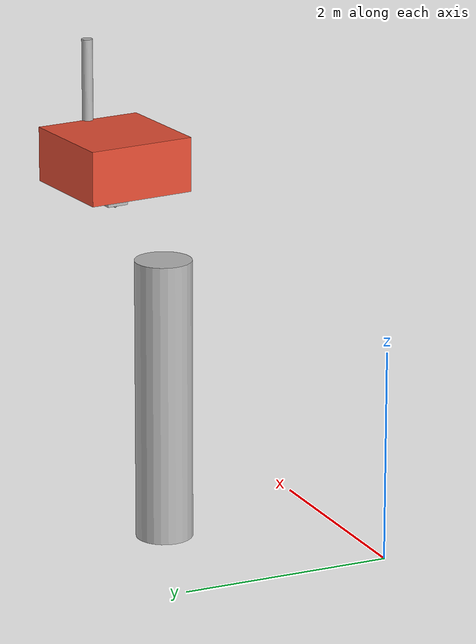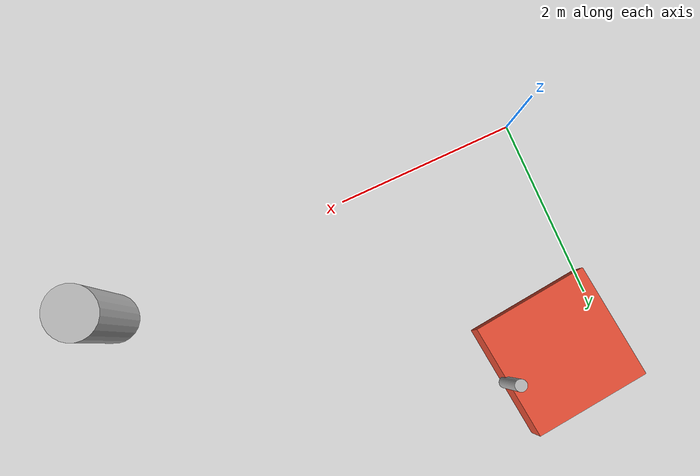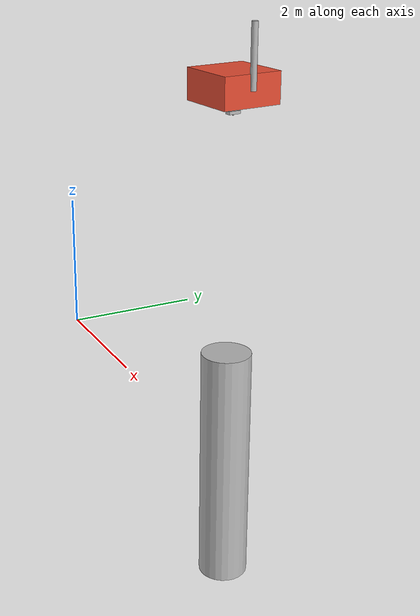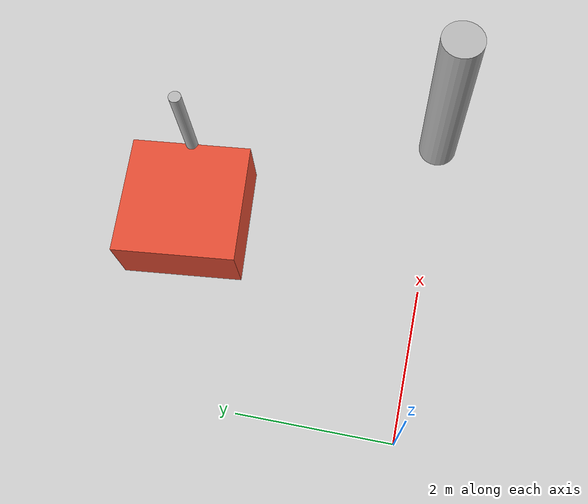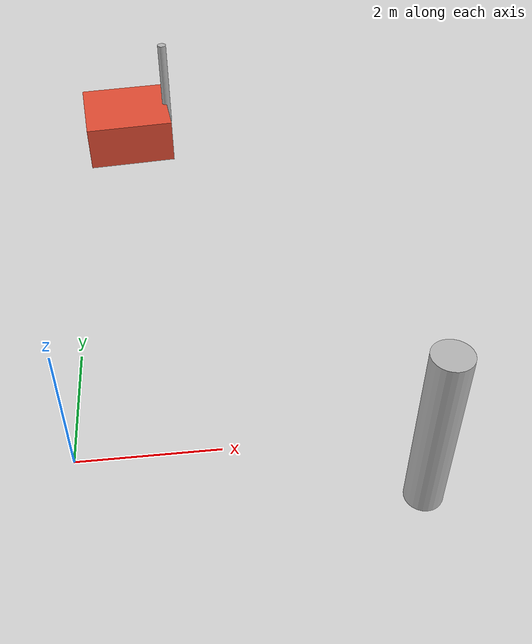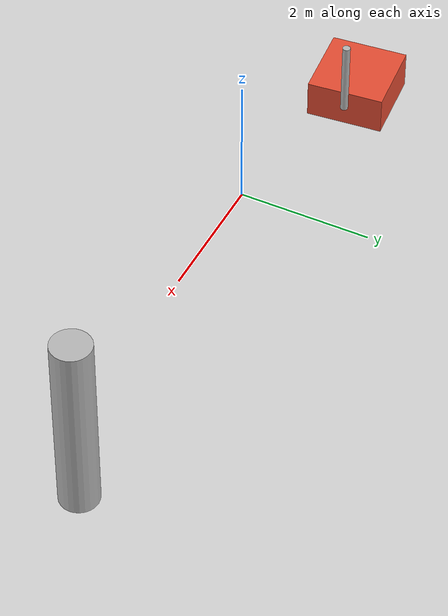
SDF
<sdf version="1.12">
 <world name="nested_test_world">
  <model name="top_robot">
   <static>false</static>
   <self_collide>true</self_collide>
   <pose>1.1 2.2 3.3 0 0 0.1</pose>
   <link name="base_link">
    <pose>0 0 0.5 0 0 0</pose>
    <inertial><mass>10</mass></inertial>
    <visual name="base_visual">
     <geometry><box><size>1 1 0.5</size></box></geometry>
     <material><ambient>0.8 0.2 0.1 1</ambient><diffuse>0.9 0.3 0.2 1</diffuse></material>
    </visual>
    <collision name="base_collision">
     <geometry><box><size>1 1 0.5</size></box></geometry>
     <surface>
      <friction><ode><mu>0.8</mu><mu2>0.6</mu2></ode></friction>
      <contact><ode><soft_cfm>0.01</soft_cfm><kp>1e9</kp></ode></contact>
     </surface>
    </collision>
    <sensor name="base_camera" type="camera">
     <pose>0.1 0 0.2 0 0 0</pose>
     <update_rate>30</update_rate>
     <camera><horizontal_fov>1.047</horizontal_fov><image><width>640</width><height>480</height></image></camera>
    </sensor>
   </link>
   <link name="arm_link">
    <pose>0.5 0 1.0 0 0 0</pose>
    <inertial><mass>5</mass></inertial>
    <visual name="arm_visual">
     <geometry><cylinder><radius>0.05</radius><length>1.0</length></cylinder></geometry>
    </visual>
   </link>
   <joint name="base_to_arm" type="revolute">
    <parent>base_link</parent>
    <child>arm_link</child>
    <axis>
     <xyz>0 1 0</xyz>
     <limit><lower>-1.57</lower><upper>1.57</upper><effort>100</effort><velocity>2.0</velocity></limit>
    </axis>
   </joint>
   <frame name="tool_frame" attached_to="arm_link"><pose>0 0 0.5 0 0 0</pose></frame>
   <model name="end_effector">
    <pose relative_to="tool_frame">0 0 0.1 0 0 0</pose>
    <link name="gripper_base">
     <inertial><mass>1.5</mass></inertial>
     <visual name="gripper_base_visual"><geometry><box><size>0.1 0.2 0.05</size></box></geometry></visual>
     <collision name="gripper_base_collision"><geometry><box><size>0.1 0.2 0.05</size></box></geometry></collision>
    </link>
    <link name="finger_left">
     <pose>0 -0.08 0.05 0 0 0</pose>
     <inertial><mass>0.3</mass></inertial>
     <visual name="finger_left_visual"><geometry><box><size>0.02 0.04 0.1</size></box></geometry></visual>
    </link>
    <link name="finger_right">
     <pose>0 0.08 0.05 0 0 0</pose>
     <inertial><mass>0.3</mass></inertial>
     <visual name="finger_right_visual"><geometry><box><size>0.02 0.04 0.1</size></box></geometry></visual>
    </link>
    <joint name="left_finger_joint" type="prismatic">
     <parent>gripper_base</parent>
     <child>finger_left</child>
     <axis><xyz>0 1 0</xyz><limit><lower>-0.04</lower><upper>0</upper></limit></axis>
    </joint>
    <joint name="right_finger_joint" type="prismatic">
     <parent>gripper_base</parent>
     <child>finger_right</child>
     <axis><xyz>0 1 0</xyz><limit><lower>0</lower><upper>0.04</upper></limit></axis>
    </joint>
    <frame name="grasp_frame" attached_to="gripper_base"><pose>0 0 0.08 0 0 0</pose></frame>
    <model name="sensor_module">
     <pose>0 0 -0.03 0 0 0</pose>
     <link name="sensor_housing">
      <inertial><mass>0.2</mass></inertial>
      <visual name="sensor_housing_visual"><geometry><sphere><radius>0.02</radius></sphere></geometry></visual>
      <sensor name="force_torque_sensor" type="force_torque">
       <update_rate>1000</update_rate>
       <force_torque><frame>child</frame><measure_direction>child_to_parent</measure_direction></force_torque>
      </sensor>
     </link>
     <frame name="sensor_origin" attached_to="sensor_housing"><pose>0 0 0.01 0 0 0</pose></frame>
    </model>
   </model>
   <joint name="arm_to_effector" type="fixed">
    <parent>arm_link</parent>
    <child>end_effector::gripper_base</child>
   </joint>
   <gripper name="main_gripper">
    <grasp_check><min_contact_count>2</min_contact_count><attach_steps>20</attach_steps></grasp_check>
    <gripper_link>end_effector::finger_left</gripper_link>
    <gripper_link>end_effector::finger_right</gripper_link>
    <palm_link>end_effector::gripper_base</palm_link>
   </gripper>
  </model>
  <model name="sensor_tower">
   <static>true</static>
   <pose>5 0 0 0 0 0</pose>
   <link name="tower_base">
    <visual name="tower_visual">
     <geometry><cylinder><radius>0.3</radius><length>3.0</length></cylinder></geometry>
    </visual>
    <collision name="tower_collision">
     <geometry><cylinder><radius>0.3</radius><length>3.0</length></cylinder></geometry>
    </collision>
    <sensor name="top_lidar" type="gpu_lidar">
     <pose>0 0 1.5 0 0 0</pose>
     <update_rate>10</update_rate>
     <lidar>
      <scan>
       <horizontal>
        <samples>640</samples>
        <resolution>1</resolution>
        <min_angle>-3.14159</min_angle>
        <max_angle>3.14159</max_angle>
       </horizontal>
      </scan>
      <range><min>0.1</min><max>100</max></range>
     </lidar>
    </sensor>
    <sensor name="imu_sensor" type="imu">
     <pose>0 0 0.5 0 0 0</pose>
     <update_rate>200</update_rate>
     <imu>
      <angular_velocity>
       <x><noise type="gaussian"><mean>0</mean><stddev>0.001</stddev></noise></x>
       <y><noise type="gaussian"><mean>0</mean><stddev>0.001</stddev></noise></y>
       <z><noise type="gaussian"><mean>0</mean><stddev>0.001</stddev></noise></z>
      </angular_velocity>
     </imu>
    </sensor>
   </link>
   <frame name="antenna_mount"><pose relative_to="tower_base">0 0 1.5 0 0 0</pose></frame>
  </model>
  <light name="sun" type="directional">
   <pose>0 0 20 0 0 0</pose>
   <diffuse>1 1 1 1</diffuse>
   <specular>0.5 0.5 0.5 1</specular>
   <direction>-0.5 0.1 -0.9</direction>
  </light>
  <frame name="world_origin"/>
  <frame name="spawn_point" attached_to="world_origin"><pose>10 10 0 0 0 1.57</pose></frame>
 </world>
</sdf>
